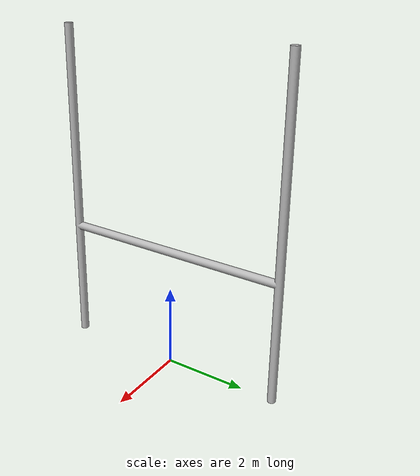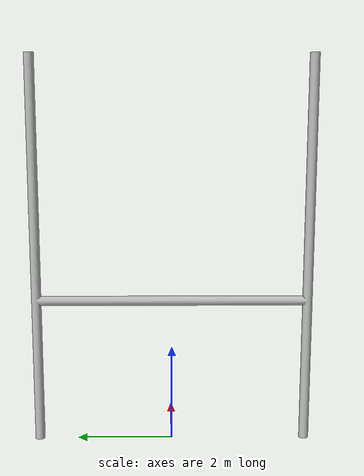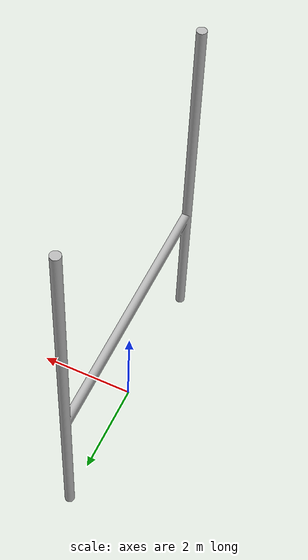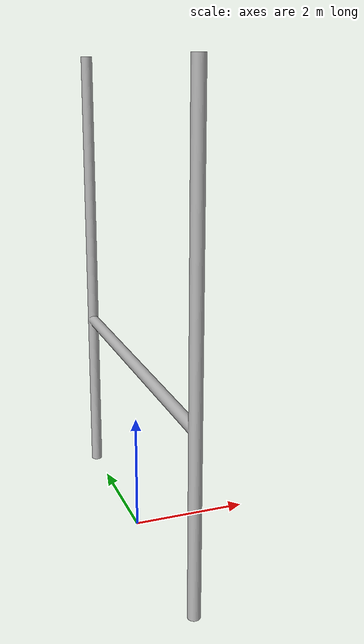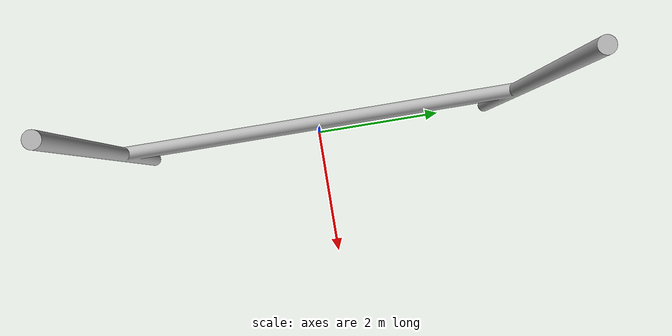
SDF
<?xml version='1.0'?>
<sdf version='1.5'>
  <model name="Poteaux_rugby">
	  <static>true</static>

	  <link name='poteau_droit'>
      <pose>0 -2.8 0 0 0 0</pose>

      <collision name='collision'>
        <geometry>
           <box>
            <size>0.2 0.2 8</size>
          </box>
        </geometry>
      </collision>

      <visual name='visual'>
          <pose>0 2.8 0 0 0 0</pose>

        	<geometry>
          	<mesh>
          		<uri>model://poteaux_rugby/meshes/poteaux_rugby.dae</uri>
          		<scale>1 1 1</scale>
        	</mesh>

        	</geometry>
      </visual>
	  </link>

    <link name='poteau_gauche'>
      <pose>0 2.8 0 0 0 0</pose>

      <collision name='collision'>
        <geometry>
           <box>
            <size>0.2 0.2 8</size>
          </box>
        </geometry>
      </collision>

    </link>
  </model>
</sdf>
